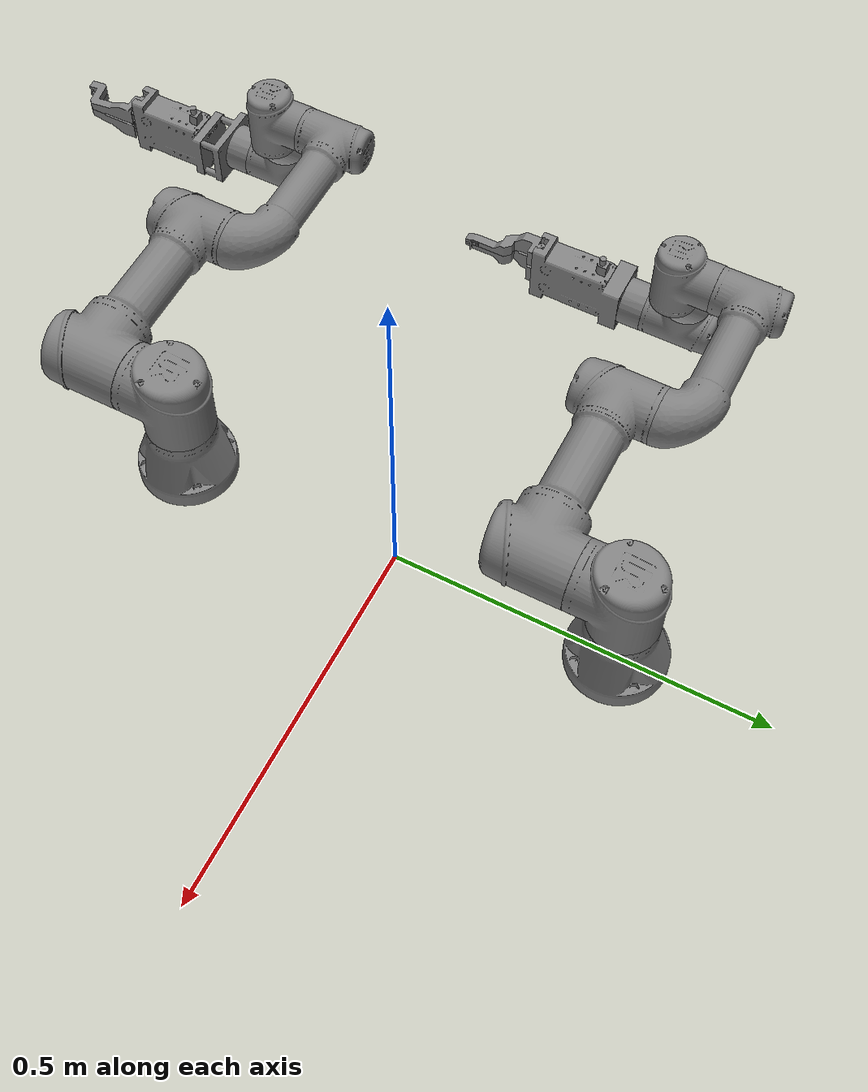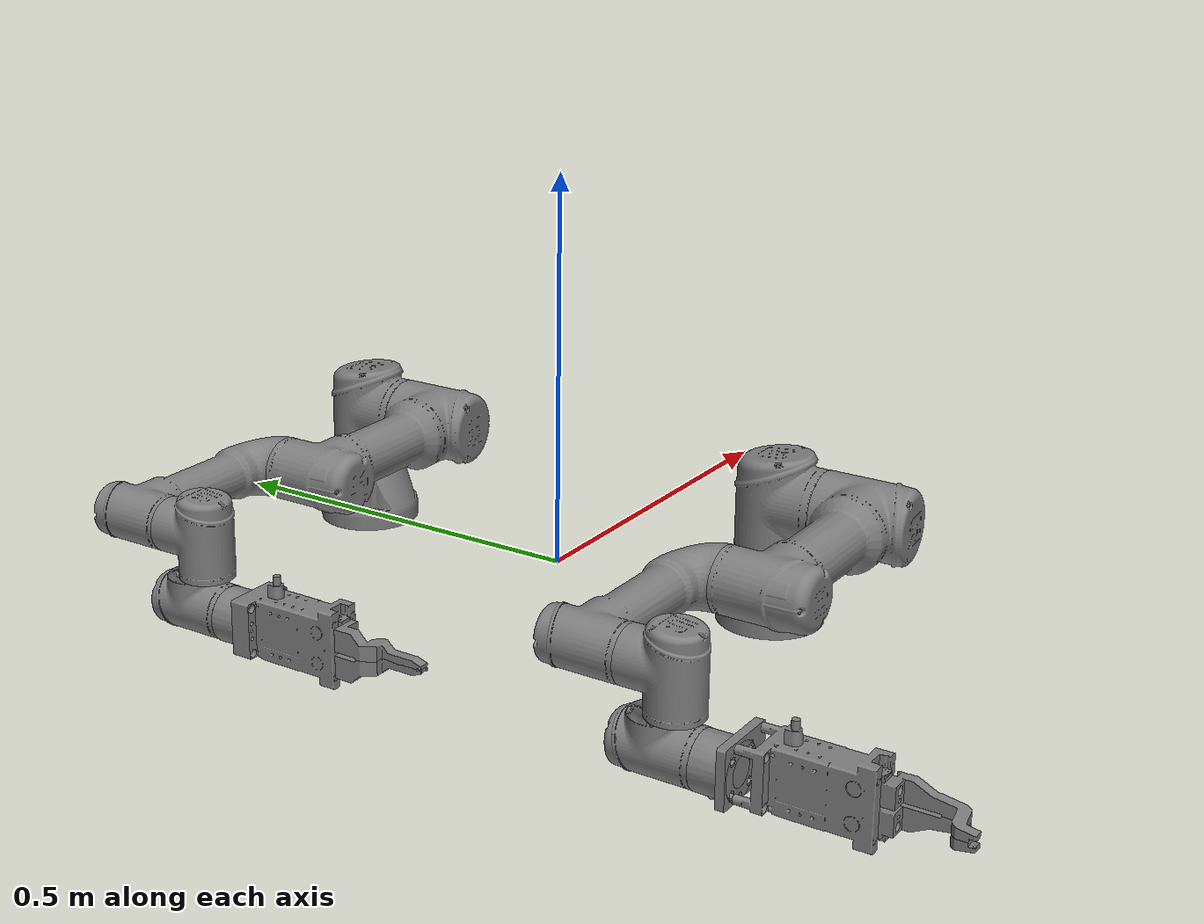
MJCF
<?xml version="1.0" ?>
<mujoco>
  <option gravity="0 0 -9.81" timestep="0.002"/>
  <default>
    <geom margin="0.0" solref="0.02 1.0" solimp="0.9 0.95 0.002"/>
  </default>
  <asset>
    <mesh name="mesh_0" file="E:\src_code\one\one\robots\manipulators\universal_robots\ur3\meshes\base.stl"/>
    <mesh name="mesh_1" file="E:\src_code\one\one\robots\manipulators\universal_robots\ur3\meshes\shoulder.stl"/>
    <mesh name="mesh_2" file="E:\src_code\one\one\robots\manipulators\universal_robots\ur3\meshes\upperarm.stl"/>
    <mesh name="mesh_3" file="E:\src_code\one\one\robots\manipulators\universal_robots\ur3\meshes\forearm.stl"/>
    <mesh name="mesh_4" file="E:\src_code\one\one\robots\manipulators\universal_robots\ur3\meshes\wrist1.stl"/>
    <mesh name="mesh_5" file="E:\src_code\one\one\robots\manipulators\universal_robots\ur3\meshes\wrist2.stl"/>
    <mesh name="mesh_6" file="E:\src_code\one\one\robots\manipulators\universal_robots\ur3\meshes\wrist3.stl"/>
    <mesh name="mesh_7" file="E:\src_code\one\kurabo\ee\krb_left\meshes\lf_base.stl"/>
    <mesh name="mesh_8" file="E:\src_code\one\kurabo\ee\krb_left\meshes\lf_left.stl"/>
    <mesh name="mesh_9" file="E:\src_code\one\kurabo\ee\krb_left\meshes\lh_right.stl"/>
    <mesh name="mesh_10" file="E:\src_code\one\kurabo\ee\krb_right\meshes\rh_base.stl"/>
    <mesh name="mesh_11" file="E:\src_code\one\kurabo\ee\krb_right\meshes\rh_left.stl"/>
    <mesh name="mesh_12" file="E:\src_code\one\kurabo\ee\krb_right\meshes\rh_right.stl"/>
  </asset>
  <worldbody>
    <body name="sobj_0" pos="0.0 -0.30000001192092896 0.0" quat="1.0 0.0 0.0 0.0">
      <geom type="mesh" size="1 1 1" pos="0.0 0.0 0.0" quat="6.123234262925839e-17 0.0 0.0 1.0" mesh="mesh_0" friction="2 0.1 0.01" contype="1" conaffinity="7"/>
      <body name="sobj_1" pos="0.0 0.0 0.15189999341964722" quat="1.0 0.0 0.0 0.0">
        <joint name="jnt_0" type="hinge" axis="0.0 0.0 1.0" range="-6.2831854820251465 6.2831854820251465" damping="1" frictionloss="0.01" armature="0.02"/>
        <geom type="mesh" size="1 1 1" pos="0.0 0.0 0.0" quat="6.123234262925839e-17 0.0 0.0 1.0" mesh="mesh_1" friction="2 0.1 0.01" contype="1" conaffinity="7"/>
        <body name="sobj_2" pos="0.0 0.0 0.0" quat="0.7071067690849304 0.7071067690849304 0.0 0.0">
          <joint name="jnt_1" type="hinge" axis="0.0 0.0 1.0" range="-6.2831854820251465 6.2831854820251465" damping="1" frictionloss="0.01" armature="0.02"/>
          <geom type="mesh" size="1 1 1" pos="0.0 0.0 0.11980000138282776" quat="0.5 0.5 -0.5 -0.5" mesh="mesh_2" friction="2 0.1 0.01" contype="1" conaffinity="7"/>
          <body name="sobj_3" pos="-0.24365000426769257 0.0 0.0" quat="1.0 0.0 0.0 0.0">
            <joint name="jnt_2" type="hinge" axis="0.0 0.0 1.0" range="-6.2831854820251465 6.2831854820251465" damping="1" frictionloss="0.01" armature="0.02"/>
            <geom type="mesh" size="1 1 1" pos="0.0 0.0 0.027499999850988388" quat="0.5 0.5 -0.5 -0.5" mesh="mesh_3" friction="2 0.1 0.01" contype="1" conaffinity="7"/>
            <body name="sobj_4" pos="-0.21324999630451202 0.0 0.11235000193119049" quat="1.0 0.0 0.0 0.0">
              <joint name="jnt_3" type="hinge" axis="0.0 0.0 1.0" range="-6.2831854820251465 6.2831854820251465" damping="1" frictionloss="0.01" armature="0.02"/>
              <geom type="mesh" size="1 1 1" pos="0.0 0.0 -0.08500000089406967" quat="0.7071067690849304 0.7071067690849304 0.0 0.0" mesh="mesh_4" friction="2 0.1 0.01" contype="1" conaffinity="7"/>
              <body name="sobj_5" pos="0.0 -0.08534999936819077 -1.7505576849208282e-11" quat="0.7071067690849304 0.7071067690849304 0.0 0.0">
                <joint name="jnt_4" type="hinge" axis="0.0 0.0 1.0" range="-6.2831854820251465 6.2831854820251465" damping="1" frictionloss="0.01" armature="0.02"/>
                <geom type="mesh" size="1 1 1" pos="0.0 0.0 -0.08299999684095383" quat="1.0 0.0 0.0 0.0" mesh="mesh_5" friction="2 0.1 0.01" contype="1" conaffinity="7"/>
                <body name="sobj_6" pos="0.0 0.08190000057220459 -1.679797100029301e-11" quat="-0.7071067690849304 0.7071067690849304 -8.659561265171044e-17 0.0">
                  <joint name="jnt_5" type="hinge" axis="0.0 0.0 1.0" range="-6.2831854820251465 6.2831854820251465" damping="1" frictionloss="0.01" armature="0.02"/>
                  <geom type="mesh" size="1 1 1" pos="0.0 -0.0025500000920146704 -0.0820000022649765" quat="0.7071067690849304 0.7071067690849304 0.0 0.0" mesh="mesh_6" friction="2 0.1 0.01" contype="1" conaffinity="7"/>
                  <body name="sobj_7" pos="0.0 0.0 -0.003000000026077032" quat="1.0 0.0 0.0 0.0">
                    <geom type="mesh" size="1 1 1" pos="0.0 0.0 0.0" quat="1.0 0.0 0.0 0.0" mesh="mesh_7" friction="2 0.1 0.01" contype="1" conaffinity="7"/>
                    <body name="sobj_8" pos="0.0 -0.011900000274181366 0.0" quat="1.0 0.0 0.0 0.0">
                      <joint name="jnt_6" type="slide" axis="0.0 1.0 0.0" range="0.0 0.011900000274181366" damping="1" frictionloss="0.01" armature="0.02"/>
                      <geom type="mesh" size="1 1 1" pos="0.0 0.0 0.0" quat="1.0 0.0 0.0 0.0" mesh="mesh_8" friction="2 0.1 0.01" contype="1" conaffinity="7"/>
                    </body>
                    <body name="sobj_9" pos="0.0 0.011900000274181366 0.0" quat="1.0 0.0 0.0 0.0">
                      <joint name="jnt_7" type="slide" axis="-0.0 -1.0 -0.0" range="0.0 0.011900000274181366" damping="1" frictionloss="0.01" armature="0.02"/>
                      <geom type="mesh" size="1 1 1" pos="0.0 0.0 0.0" quat="1.0 0.0 0.0 0.0" mesh="mesh_9" friction="2 0.1 0.01" contype="1" conaffinity="7"/>
                    </body>
                  </body>
                </body>
              </body>
            </body>
          </body>
        </body>
      </body>
    </body>
    <body name="sobj_10" pos="0.0 0.30000001192092896 0.0" quat="1.0 0.0 0.0 0.0">
      <geom type="mesh" size="1 1 1" pos="0.0 0.0 0.0" quat="6.123234262925839e-17 0.0 0.0 1.0" mesh="mesh_0" friction="2 0.1 0.01" contype="1" conaffinity="7"/>
      <body name="sobj_11" pos="0.0 0.0 0.15189999341964722" quat="1.0 0.0 0.0 0.0">
        <joint name="jnt_8" type="hinge" axis="0.0 0.0 1.0" range="-6.2831854820251465 6.2831854820251465" damping="1" frictionloss="0.01" armature="0.02"/>
        <geom type="mesh" size="1 1 1" pos="0.0 0.0 0.0" quat="6.123234262925839e-17 0.0 0.0 1.0" mesh="mesh_1" friction="2 0.1 0.01" contype="1" conaffinity="7"/>
        <body name="sobj_12" pos="0.0 0.0 0.0" quat="0.7071067690849304 0.7071067690849304 0.0 0.0">
          <joint name="jnt_9" type="hinge" axis="0.0 0.0 1.0" range="-6.2831854820251465 6.2831854820251465" damping="1" frictionloss="0.01" armature="0.02"/>
          <geom type="mesh" size="1 1 1" pos="0.0 0.0 0.11980000138282776" quat="0.5 0.5 -0.5 -0.5" mesh="mesh_2" friction="2 0.1 0.01" contype="1" conaffinity="7"/>
          <body name="sobj_13" pos="-0.24365000426769257 0.0 0.0" quat="1.0 0.0 0.0 0.0">
            <joint name="jnt_10" type="hinge" axis="0.0 0.0 1.0" range="-6.2831854820251465 6.2831854820251465" damping="1" frictionloss="0.01" armature="0.02"/>
            <geom type="mesh" size="1 1 1" pos="0.0 0.0 0.027499999850988388" quat="0.5 0.5 -0.5 -0.5" mesh="mesh_3" friction="2 0.1 0.01" contype="1" conaffinity="7"/>
            <body name="sobj_14" pos="-0.21324999630451202 0.0 0.11235000193119049" quat="1.0 0.0 0.0 0.0">
              <joint name="jnt_11" type="hinge" axis="0.0 0.0 1.0" range="-6.2831854820251465 6.2831854820251465" damping="1" frictionloss="0.01" armature="0.02"/>
              <geom type="mesh" size="1 1 1" pos="0.0 0.0 -0.08500000089406967" quat="0.7071067690849304 0.7071067690849304 0.0 0.0" mesh="mesh_4" friction="2 0.1 0.01" contype="1" conaffinity="7"/>
              <body name="sobj_15" pos="0.0 -0.08534999936819077 -1.7505576849208282e-11" quat="0.7071067690849304 0.7071067690849304 0.0 0.0">
                <joint name="jnt_12" type="hinge" axis="0.0 0.0 1.0" range="-6.2831854820251465 6.2831854820251465" damping="1" frictionloss="0.01" armature="0.02"/>
                <geom type="mesh" size="1 1 1" pos="0.0 0.0 -0.08299999684095383" quat="1.0 0.0 0.0 0.0" mesh="mesh_5" friction="2 0.1 0.01" contype="1" conaffinity="7"/>
                <body name="sobj_16" pos="0.0 0.08190000057220459 -1.679797100029301e-11" quat="-0.7071067690849304 0.7071067690849304 -8.659561265171044e-17 0.0">
                  <joint name="jnt_13" type="hinge" axis="0.0 0.0 1.0" range="-6.2831854820251465 6.2831854820251465" damping="1" frictionloss="0.01" armature="0.02"/>
                  <geom type="mesh" size="1 1 1" pos="0.0 -0.0025500000920146704 -0.0820000022649765" quat="0.7071067690849304 0.7071067690849304 0.0 0.0" mesh="mesh_6" friction="2 0.1 0.01" contype="1" conaffinity="7"/>
                  <body name="sobj_17" pos="0.0 0.0 -0.003000000026077032" quat="1.0 0.0 0.0 0.0">
                    <geom type="mesh" size="1 1 1" pos="0.0 0.0 0.0" quat="1.0 0.0 0.0 0.0" mesh="mesh_10" friction="2 0.1 0.01" contype="1" conaffinity="7"/>
                    <body name="sobj_18" pos="0.0 -0.011900000274181366 0.0" quat="1.0 0.0 0.0 0.0">
                      <joint name="jnt_14" type="slide" axis="0.0 1.0 0.0" range="0.0 0.011900000274181366" damping="1" frictionloss="0.01" armature="0.02"/>
                      <geom type="mesh" size="1 1 1" pos="0.0 0.0 0.0" quat="1.0 0.0 0.0 0.0" mesh="mesh_11" friction="2 0.1 0.01" contype="1" conaffinity="7"/>
                    </body>
                    <body name="sobj_19" pos="0.0 0.011900000274181366 0.0" quat="1.0 0.0 0.0 0.0">
                      <joint name="jnt_15" type="slide" axis="-0.0 -1.0 -0.0" range="0.0 0.011900000274181366" damping="1" frictionloss="0.01" armature="0.02"/>
                      <geom type="mesh" size="1 1 1" pos="0.0 0.0 0.0" quat="1.0 0.0 0.0 0.0" mesh="mesh_12" friction="2 0.1 0.01" contype="1" conaffinity="7"/>
                    </body>
                  </body>
                </body>
              </body>
            </body>
          </body>
        </body>
      </body>
    </body>
  </worldbody>
  <contact>
    <exclude body1="sobj_0" body2="sobj_1"/>
    <exclude body1="sobj_2" body2="sobj_4"/>
    <exclude body1="sobj_1" body2="sobj_2"/>
    <exclude body1="sobj_3" body2="sobj_4"/>
    <exclude body1="sobj_4" body2="sobj_6"/>
    <exclude body1="sobj_2" body2="sobj_3"/>
    <exclude body1="sobj_4" body2="sobj_5"/>
    <exclude body1="sobj_0" body2="sobj_2"/>
    <exclude body1="sobj_5" body2="sobj_6"/>
    <exclude body1="sobj_1" body2="sobj_3"/>
    <exclude body1="sobj_3" body2="sobj_5"/>
    <exclude body1="sobj_7" body2="sobj_8"/>
    <exclude body1="sobj_7" body2="sobj_9"/>
    <exclude body1="sobj_8" body2="sobj_9"/>
    <exclude body1="sobj_10" body2="sobj_11"/>
    <exclude body1="sobj_12" body2="sobj_14"/>
    <exclude body1="sobj_11" body2="sobj_12"/>
    <exclude body1="sobj_13" body2="sobj_14"/>
    <exclude body1="sobj_14" body2="sobj_16"/>
    <exclude body1="sobj_12" body2="sobj_13"/>
    <exclude body1="sobj_14" body2="sobj_15"/>
    <exclude body1="sobj_10" body2="sobj_12"/>
    <exclude body1="sobj_15" body2="sobj_16"/>
    <exclude body1="sobj_11" body2="sobj_13"/>
    <exclude body1="sobj_13" body2="sobj_15"/>
    <exclude body1="sobj_17" body2="sobj_18"/>
    <exclude body1="sobj_17" body2="sobj_19"/>
    <exclude body1="sobj_18" body2="sobj_19"/>
  </contact>
  <compiler angle="radian"/>
</mujoco>
